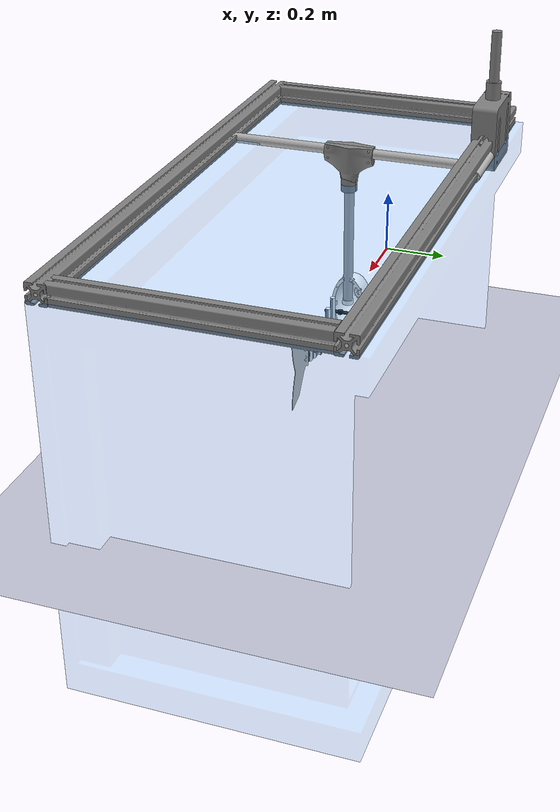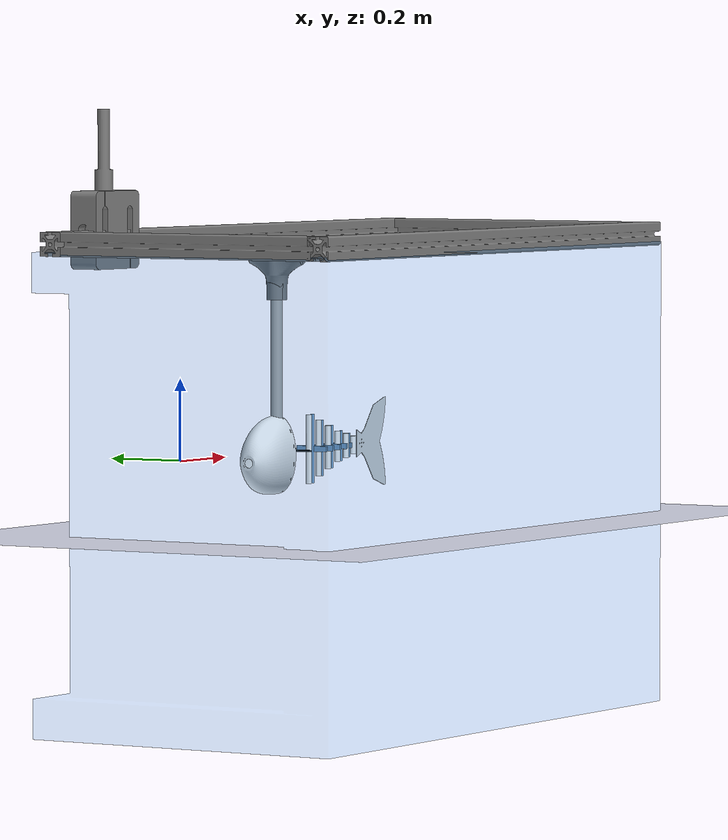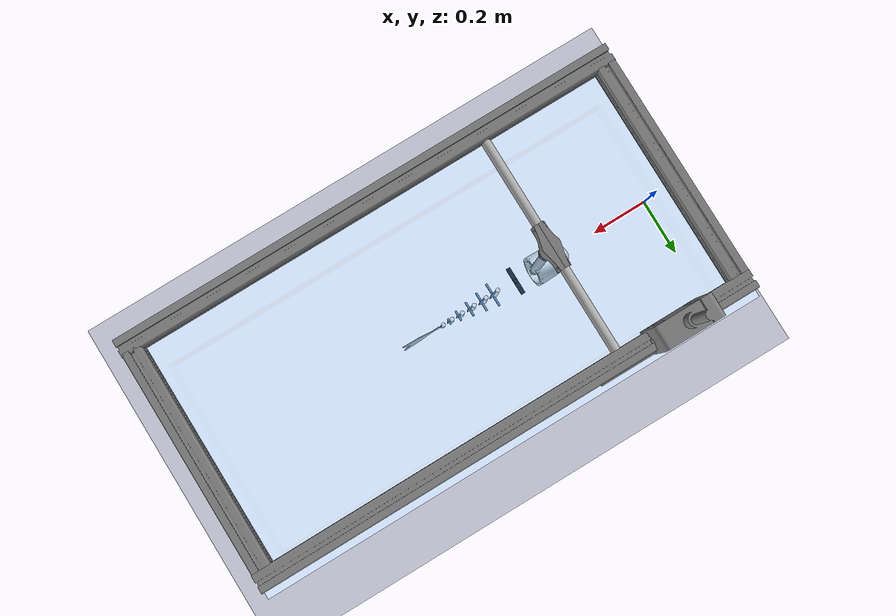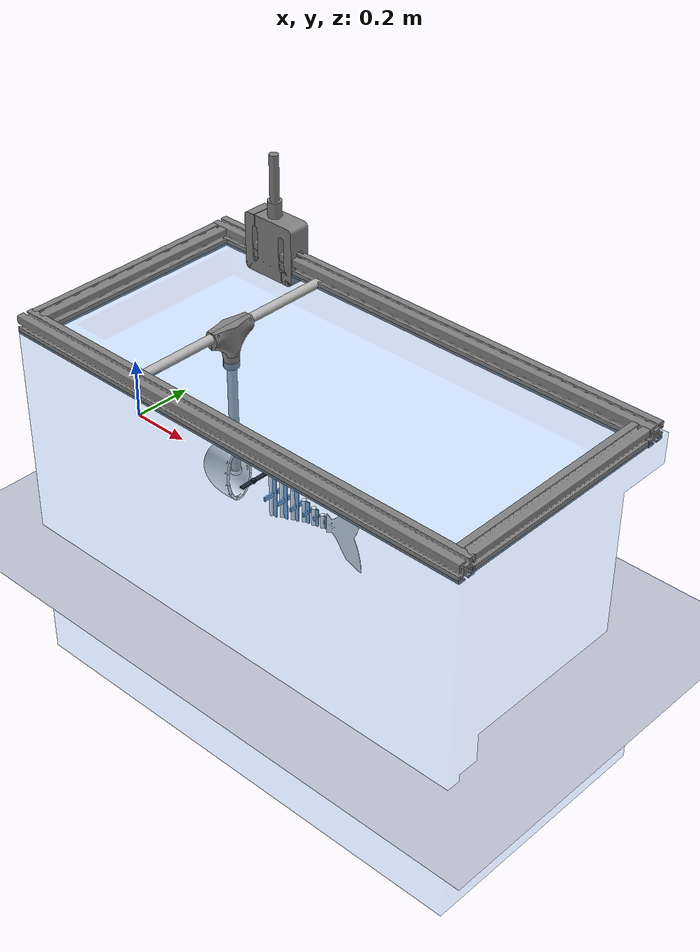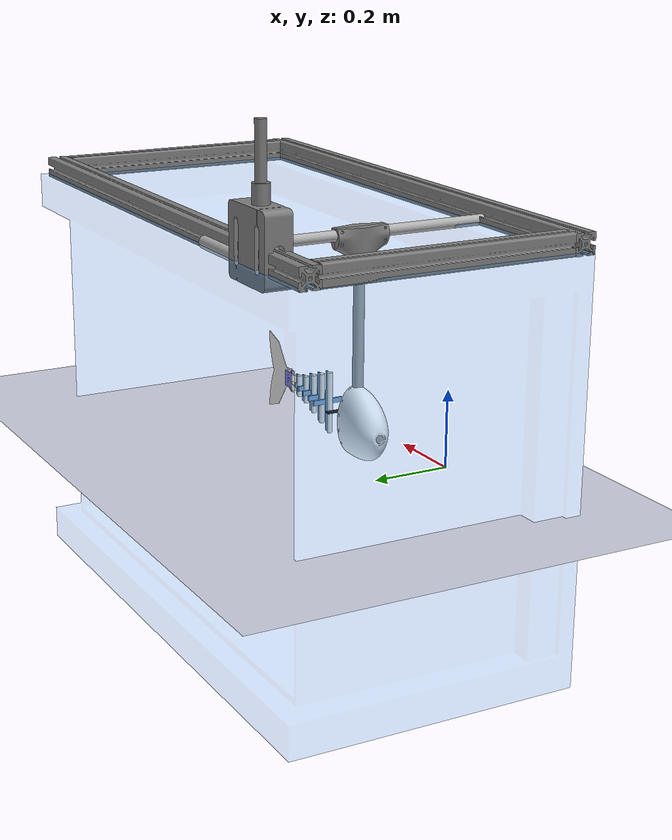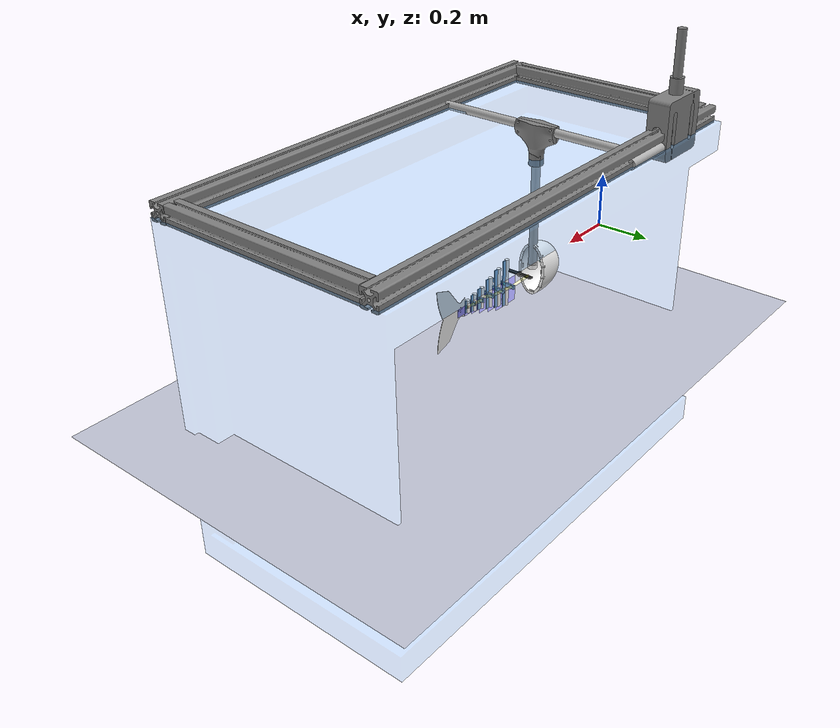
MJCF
<!--Creates a tendon fish based on Mike Yan Michelis' design. Adds a contact set between the head and the sliding block-->
<!-- Measures the force of the fish (from the thrust of its tail) via the FishTest.py script and the force sensor on the block-->
<!-- adds a realistic mass value to the bodies-->
<!--adds realistic proportions and ratios amongst the tail length, tail joints, motor to head and motor to tail-->
<!--adds a backwards force constraint to register tension, whereas forward measures compression-->
<mujoco model="tendonFish">
    <option gravity="0 0 0" density="1000" viscosity="0.0013" integrator="implicitfast" timestep="0.001" iterations="100" solver="Newton" tolerance="1e-15" ls_tolerance="1e-9" noslip_tolerance="1e-9" o_solimp="0 0.01 0.01 0.1 2">
        <flag contact="enable"/>
    </option>

    <visual>
        <global offheight="2160" offwidth="3840"/>
        <rgba haze=".3 .3 .3 1"/>
    </visual>

    <!--add a mesh that pivots like the actual fishtank setup-->
    <!--imports meshes-->
    <asset>
        <texture type="skybox" builtin="gradient" rgb1="0.6 0.6 0.6" rgb2="0 0 0" width="512" height="512"/>
        <texture name="texplane" type="2d" builtin="checker" rgb1=".15 .2 .35" rgb2=".2 .3 .45" width="512" height="512" mark="cross" markrgb=".8 .8 .8"/>
        <material name="matplane" reflectance="0.3" texture="texplane" texrepeat="10 10" texuniform="true"/>
        <mesh name="tailMesh" file="tailV2.STL" scale="0.0015 0.0015 0.0015" />
        <mesh name="headMesh" file="headExternal.STL" scale="0.0015 0.0015 0.0015" />
        <mesh name="Tank" file="glassTank.STL" scale="0.0015 0.0015 0.0025" />
        <mesh name="loadCell" file="loadCell.STL" scale="0.015 0.015 0.015" />
        <mesh name="4040" file="4040_L1.STL" scale="0.0015 0.0015 0.00343" />
        <mesh name="tubeConnector" file="tubeConnector.STL" scale="0.0015 0.0015 0.0015" />
        <mesh name="4040_smaller" file="4040_L1.STL" scale="0.0015 0.0015 0.0015" />

        <material name="acrylic" rgba="0.576470588235 0.694117647059 0.8 0.2"/>
        <material name="alu" reflectance="0.9" specular="0.9" shininess="0.9" rgba=".7 .7 .7 1"/>
        <material name="marker" rgba="0.0196078431373 0.960784313725 0.96862745098 .3"/>
        <!--density of PLA taken to be 1430, not referenced as a body but all density=1430 references are taken to be PLA-->
    </asset>

    <!--High damping and stifness values on tendon make it semi-rigid which is what is intended in the real-fish test-->
    <default>
        <joint type="hinge" pos="0 0 0" axis="0 0 1" range="-80 80" stiffness="0.65" damping="0.0"/>
        <geom fluidcoef="0.1 0.1 0.1 2.0 1.0" condim="1"/>
        <tendon width="0.005" rgba="0.941176470588 0.96862745098 0.0196078431373 .2" stiffness="60" damping="1"/>
    </default>

    <worldbody>
        <camera name="fixed" pos="0.4 -1.2 1.2" xyaxes="1 0 0 0 1 1"/>
        <camera name="fixedTop" pos="-0.85 0 1.5" xyaxes="0 -1 0 1 0 0.75"/>
        <camera name="fixedDiag" pos=".55 -1.5 1.2" xyaxes="1 0 0  0 0.5 0.5"/>
        <camera pos="0.625 -0.1 0.65" xyaxes="0.75 0.65 -0.1  -0.4 0.4 0.82"/>

        <geom name="floor" pos="0 0 -0.2" size="0 0 1" type="plane" material="matplane"/>
        <geom name="ceiling" pos="0 0 0.2" size="0 0 1" zaxis="0 0 -1" type="plane" rgba=".7 .1 .1 0"/>
        <light directional="true" diffuse=".8 .8 .8" specular=".2 .2 .2" pos="0 0 5" dir="0 0 -1"/>

        <!--creates a loadcell body and overlapping mesh to mimic our real-life testing-->
        <body name="slider_body" pos=".275 .4 .5">
            <!--creates a geometry, not a joint, restricts all movement-->
            <geom type="box" size=".05 .05 .05" rgba="1 1 1 0" contype="1" mass=".1" conaffinity="1"/>
            <site name="ft_sensor" pos="0 0 0" rgba="1 1 1 0" size=".05 .05 .05" type="box" />
            <geom name="loadingCell" type="mesh" mesh="loadCell" pos="-.125 -.055 .350" quat="-.7071 0 -.7071 0"  conaffinity="0" contype="0"/>
        </body>

        <!--creates a loadcell body and overlapping mesh, however, I change the transparency to zero to be mroe similar to real world-->
        <body name="slider_body2" pos=".575 .4 .5">
            <!--creates a geometry, not a joint, restricts all movement-->
            <geom type="box" size=".05 .4 .05" rgba="0.0196078431373 0.960784313725 0.96862745098 0" contype="1" mass=".1" conaffinity="1"/>
            <site name="ft_sensor2" pos="0 0 0" rgba="1 1 1 0" size=".05 .05 .05" type="box" />
        </body>

        <body name="FishTank" pos="0 -.42 -.70">
            <geom name="TankMesh" type="mesh" mesh="Tank" pos="0 0 0" mass="0" contype="0" conaffinity="0" rgba="0.160784313725 0.588235294118 1 0.1"/>
        </body>

        <!--adds a 40-40 setup like in the real-life test, they actually cover a lot of the components of the force-setup-->
        <body name="40-40_setup" pos="0 0 .55">
            <geom name="4040v1" type="mesh" mesh="4040" pos="0 -.42 0" mass=".001" contype="0" conaffinity="0" quat=".7071 0 .7071 0" />
            <geom name="4040v2" type="mesh" mesh="4040" pos="0 .35 0" mass=".001" contype="0" conaffinity="0" quat=".7071 0 .7071 0" />

            <geom name="4040v3" type="mesh" mesh="4040_smaller" pos="0 .35 -.06" mass=".001" contype="0" conaffinity="0" quat=".7071 .7071 0 0"/>
            <geom name="4040v4" type="mesh" mesh="4040_smaller" pos="1.585 .35 -.06" mass=".001" contype="0" conaffinity="0" quat=".7071 .7071 0 0"/>
        </body>

        <!-- adds a slider range to keep the fish always propogating forward from its original com like in the simulation -->
        <!-- add a slider that keeps the head moving forward-->
        <!-- adds a soft-constraint on the body to speed up simulation time -->
        <body pos=".35 0 0">
            <joint name="headX" pos="0.02432519 0 0.00306519" type="slide" axis="1 0 0" stiffness="0" damping="0" range="-0.05 0.015"/>
            <joint name="headY" pos="0.02432519 0 0.00306519" type="slide" axis="0 1 0" stiffness="0" damping="0" range="-0.025 0.025"/>
            <site name="COM" pos="0.02432519 0 0.00306519" size="0.015" material="marker"/>

            <!-- realistic mass should be about .1 kg, had been .25 -->
            <!--adds hard constraints in the head that act like pivots to turn the slider-force object and turn translational motion into rotational energy-->
            <geom name="head_mesh" type="mesh" mesh="headMesh" pos=".1 0.065 .1"  material="acrylic" mass=".1" quat="0 0 .7071 -.7071" fluidshape="ellipsoid"  contype="0" conaffinity="0" rgba="1 1 1 1" />
            <geom name="constraint_head" type="box" pos="0.1125 0 0" rgba=" 1 1 1 0" size=".005 .04 .04" contype="1" conaffinity="1" />
            <geom name="constraint_head_2" type="box" pos="0.0615 0 0" rgba=" 1 1 1 0" size=".005 .04 .04" contype="1" conaffinity="1" />

            <!--pretty much just translates the force of the fish's nose to a load amplifier and load censor, analogous to real-life testing-->
            <!--Adds a slider that keeps is constrained to the x-axis, the first geometry is what actually inputs the force from the fish-->
            <body name="SliderForce_Base" pos="0.025 0 .50306519">
                    <joint name="forceJoint2" type="slide" axis="1 0 0" damping="1"  />
                        <geom name="horizontalHinge" type="cylinder" size=".0175 .1"
                        material="alu" mass=".001" quat=".7071 0 .7071 0"
                        contype="1" conaffinity="1" pos=".05 .4 0"/>
                    <!--geometry that takes fish's translational motion and turns it into rotational and back into translational force output-->
                    <body name="ForceAmp_Base" pos="0.0625 0 -.5">
                        <geom name="vertical" type="cylinder" pos="0 0 .25" size=".015 .25" material="alu" mass=".001"  contype="0" conaffinity="0" />
                        <geom name="baseVertical" type="cylinder" pos="0 0 0" size=".0175 .0075" rgba="1 1 1 1" mass=".001" contype="1" conaffinity="1" />
                        <geom name="tube1" type="mesh" mesh="tubeConnector" pos=".029 -.077 .375" mass=".001" contype="0" conaffinity="0" quat=".7071 0 0 .7071"/>
                        <geom name="tube2" type="mesh" mesh="tubeConnector" pos="-.029 .075 .375" mass=".001" contype="0" conaffinity="0" quat="-.7071 0 0 .7071"/>

                        <joint name="forceJoint1" type="hinge" axis=" 0 1 0" pos="0 0 -.25" />
                        <geom name="outofpageHinge" type="cylinder" pos=" 0 0 .5" size=".015 .4" material="alu" mass=".001"  quat=".7071 .7071 0 0" contype="0" conaffinity="0" />
                    </body>
            </body>

            <body pos="0.1635 0 0" name="motor" >
                <joint name="motor_rotate" type="hinge" axis="0 0 1" pos="0 0 0" limited="false" stiffness="0" damping="0"/>
                <geom name="motorSlider" type="cylinder" pos="0 0 0" size="0.0075 0.006" rgba=".1 .1 .1 1" density="1250" fluidshape="ellipsoid"/>
                <geom name="motorRods" type="box" pos="0 0 0" size="0.0075 0.05 0.001975" rgba=".1 .1 .1 1" density="1250" fluidshape="ellipsoid" contype="0" conaffinity="0"/>
                <site name="bodyLeft" pos="0 -0.035 0.00345" size="0.005" rgba=".9 .6 .5 .5"/>
                <site name="bodyRight" pos="0 0.035 0.00345" size="0.005" rgba=".9 .6 .5 .5"/>
            </body>

            <!--center frame realistic mass should be around .2 kg , divided by 5 joints should be .04 kg per joint, however, we are using PLA density-->
            <!--had been .290000-->
            <!--to get correct sizing distance, this first position is moved from .29 to .24 then all are moved backwards .1-->
            <!--changed color scheme to be more tolerant to color-blind people with blue-yellow white scheme-->
            <body pos="0.24 0 0">
                <geom name="joint0" type="cylinder" pos="0 0 0" size="0.0075 0.08625" rgba="1 1 1 1" mass="0" contype="0" conaffinity="0"/>
                <joint name="joint0"/>
                <geom name="joint0-tail0" type="box" pos="0.0035 0 0" size="0.0535 0.0005 0.08625" rgba="0 0 1 .4" mass="0.001" fluidshape="ellipsoid" contype="0" conaffinity="0"/>
                <geom name="tail0" type="box" pos="0.014499999999999999 0 0" size="0.0075 0.0015 0.08625" rgba=".5 .7 .9 1" density="1250" fluidshape="ellipsoid" contype="0" conaffinity="0"/>
                <site name="marker4" pos="0.014499999999999999 0 0" size="0.005" material="marker"/>

                <!--sizes of the tail_left and right aren't changed, positions further will be moved negatively .005-->
                <geom name="tail0left" type="box" pos="0.014 -0.02575 0" size="0.003 0.018 0.007" rgba=".5 .7 .9 1" density="1250" fluidshape="ellipsoid" contype="0" conaffinity="0"/>
                <geom name="tail0right" type="box" pos="0.014 0.02575 0" size="0.003 0.018 0.007" rgba=".5 .7 .9 1" density="1250" fluidshape="ellipsoid" contype="0" conaffinity="0"/>
                <site name="tail0left" pos="0.014 -0.034 0" size="0.004" rgba=".9 .6 .5 .5"/>
                <site name="tail0right" pos="0.014 0.034 0" size="0.004" rgba=".9 .6 .5 .5"/>

                <geom name="tail0-joint1" type="box" pos="0.02575 0 0" size="0.00375 0.0005 0.08625" rgba="0 0 1 .4" mass="0.04" fluidshape="ellipsoid" contype="0" conaffinity="0"/>

                <body pos="0.0445 0 0">
                    <geom name="joint1" type="cylinder" pos="0 0 0" size="0.0075 0.0703125" rgba="1 1 1 1" mass="0" contype="0" conaffinity="0"/>
                    <joint name="joint1"/>
                    <geom name="joint1-tail1" type="box" pos="0.00375 0 0" size="0.05375 0.0005 0.0703125" rgba="0 0 1 .4" mass="0.001" fluidshape="ellipsoid" contype="0" conaffinity="0"/>
                    <geom name="tail1" type="box" pos="0.015 0 0" size="0.0075 0.0015 0.0703125" rgba=".5 .7 .9 1" density="1430" fluidshape="ellipsoid" contype="0" conaffinity="0"/>
                    <site name="marker5" pos="0.015 0 0" size="0.005" material="marker"/>

                    <geom name="tail1left" type="box" pos="0.0145 -0.02075 0" size="0.003 0.0148 0.007" rgba=".5 .7 .9 1" density="1430" fluidshape="ellipsoid" contype="0" conaffinity="0"/>
                    <geom name="tail1right" type="box" pos="0.0145 0.02075 0" size="0.003 0.0148 0.007" rgba=".5 .7 .9 1" density="1430" fluidshape="ellipsoid" contype="0" conaffinity="0"/>
                    <site name="tail1left" pos="0.0145 -0.026 0" size="0.004" rgba=".9 .6 .5 .5"/>
                    <site name="tail1right" pos="0.0145 0.026 0" size="0.004" rgba=".9 .6 .5 .5"/>

                    <geom name="tail1-joint2" type="box" pos="0.02675 0 0" size="0.00425 0.0005 0.0703125" rgba="0 0 1 .4" mass="0.001" fluidshape="ellipsoid" contype="0" conaffinity="0"/>

                    <body pos="0.046 0 0">
                        <geom name="joint2" type="cylinder" pos="0 0 0" size="0.0075 0.054375" rgba="1 1 1 1" mass="0" contype="0" conaffinity="0"/>
                        <joint name="joint2"/>
                        <geom name="joint2-tail2" type="box" pos="0.00425 0 0" size="0.05425 0.0005 0.054375" rgba="0 0 1 .4" mass="0.001" fluidshape="ellipsoid" contype="0" conaffinity="0"/>
                        <geom name="tail2" type="box" pos="0.016 0 0" size="0.0075 0.0015 0.054375" rgba=".5 .7 .9 1" density="1430" fluidshape="ellipsoid" contype="0" conaffinity="0"/>
                        <site name="marker6" pos="0.016 0 0" size="0.005" material="marker"/>

                        <geom name="tail2left" type="box" pos="0.0155 -0.01575 0" size="0.003 0.0116 0.007" rgba=".5 .7 .9 1" density="1430" fluidshape="ellipsoid" contype="0" conaffinity="0"/>
                        <geom name="tail2right" type="box" pos="0.0155 0.01575 0" size="0.003 0.0116 0.007" rgba=".5 .7 .9 1" density="1430" fluidshape="ellipsoid" contype="0" conaffinity="0"/>
                        <site name="tail2left" pos="0.0155 -0.020 0" size="0.004" rgba=".9 .6 .5 .5"/>
                        <site name="tail2right" pos="0.0155 0.020 0" size="0.004" rgba=".9 .6 .5 .5"/>

                        <geom name="tail2-joint3" type="box" pos="0.027 0 0" size="0.0035 0.0005 0.054375" rgba="0 0 1 .4" mass="0.001" fluidshape="ellipsoid" contype="0" conaffinity="0"/>

                        <body pos="0.0455 0 0">
                            <geom name="joint3" type="cylinder" pos="0 0 0" size="0.0075 0.0384375" rgba="1 1 1 1" mass="0" contype="0" conaffinity="0"/>
                            <joint name="joint3"/>
                            <geom name="joint3-tail3" type="box" pos="0.0035 0 0" size="0.0535 0.0005 0.0384375" rgba="0 0 1 .4" mass="0.001" fluidshape="ellipsoid" contype="0" conaffinity="0"/>
                            <geom name="tail3" type="box" pos="0.014499999999999999 0 0" size="0.0075 0.0015 0.0384375" rgba=".5 .7 .9 1" density="1430" fluidshape="ellipsoid" contype="0" conaffinity="0"/>
                            <site name="marker7" pos="0.014499999999999999 0 0" size="0.005" material="marker"/>

                            <geom name="tail3left" type="box" pos="0.014 -0.01075 0" size="0.003 0.0084 0.007" rgba=".5 .7 .9 1" density="1430" fluidshape="ellipsoid" contype="0" conaffinity="0"/>
                            <geom name="tail3right" type="box" pos="0.014 0.01075 0" size="0.003 0.0084 0.007" rgba=".5 .7 .9 1" density="1430" fluidshape="ellipsoid" contype="0" conaffinity="0"/>
                            <site name="tail3left" pos="0.014 -0.012 0" size="0.004" rgba=".9 .6 .5 .5"/>
                            <site name="tail3right" pos="0.014 0.012 0" size="0.004" rgba=".9 .6 .5 .5"/>

                            <geom name="tail3-joint4" type="box" pos="0.0235 0 0" size="0.0015 0.0005 0.0384375" rgba="0 0 1 .4" mass="0.001" fluidshape="ellipsoid" contype="0" conaffinity="0"/>

                            <body pos="0.039999999999999998 0 0">
                                <geom name="joint4" type="cylinder" pos="0 0 0" size="0.0075 0.03046875" rgba="1 1 1 1" mass="0" contype="0" conaffinity="0"/>
                                <joint name="joint4"/>
                                <geom name="joint4-tail4" type="box" pos="0.0015 0 0" size="0.0515 0.0005 0.03046875" rgba="0 0 1 .4" mass="0.001" fluidshape="ellipsoid" contype="0" conaffinity="0"/>
                                <geom name="tail4" type="box" pos="0.010499999999999999 0 0" size="0.0075 0.0015 0.03046875" rgba=".5 .7 .9 1" density="1430" fluidshape="ellipsoid" contype="0" conaffinity="0"/>
                                <site name="marker8" pos="0.010499999999999999 0 0" size="0.005" material="marker"/>

                                <geom name="tail4left" type="box" pos="0.01 -0.00575 0" size="0.003 0.0052 0.007" rgba=".5 .7 .9 1" density="1430" fluidshape="ellipsoid" contype="0" conaffinity="0"/>
                                <geom name="tail4right" type="box" pos="0.01 0.00575 0" size="0.003 0.0052 0.007" rgba=".5 .7 .9 1" density="1430" fluidshape="ellipsoid" contype="0" conaffinity="0"/>
                                <site name="tail4left" pos="0.01 -0.008 0" size="0.004" rgba=".9 .6 .5 .5"/>
                                <site name="tail4right" pos="0.01 0.008 0" size="0.004" rgba=".9 .6 .5 .5"/>

                                <body pos="0.035 0 0">
                                    <geom name="joint5" type="cylinder" pos="0 0 0" size="0.0075 0.0225" rgba="1 1 1 1" mass="0" contype="0" conaffinity="0"/>
                                    <joint name="joint5"/>
                                    <geom name="joint5-tail5" type="box" pos="0.0015 0 0" size="0.0515 0.0005 0.0225" rgba="0 0 1 .4" mass="0.001" fluidshape="ellipsoid" contype="0" conaffinity="0"/>
                                    <geom name="tail5" type="box" pos="0.008 0 0" size="0.0055 0.0012 0.0225" rgba=".5 .7 .9 1" density="1430" fluidshape="ellipsoid" contype="0" conaffinity="0"/>
                                    <site name="marker9" pos="0.008 0 0" size="0.005" material="marker"/>

                                    <geom name="tail5left" type="box" pos="0.006 -0.00075 0" size="0.003 0.002 0.007" rgba=".5 .7 .9 1" density="1430" fluidshape="ellipsoid" contype="0" conaffinity="0"/>
                                    <geom name="tail5right" type="box" pos="0.006 0.00075 0" size="0.003 0.002 0.007" rgba=".5 .7 .9 1" density="1430" fluidshape="ellipsoid" contype="0" conaffinity="0"/>
                                    <site name="tail5left" pos="0.006 -0.003 0" size="0.004" rgba=".9 .6 .5 .5"/>
                                    <site name="tail5right" pos="0.006 0.003 0" size="0.004" rgba=".9 .6 .5 .5"/>

                                <!-- Tail Fin, realistic mass should be about .05 kg, was .15 kg -->
                                <geom name="finTail" type="mesh"  mesh="tailMesh" pos="-.190 0 -.110" size="0.005 0.005 0.025" quat="0.7071 0.7071 0 0" rgba=".9 .9 .9 1" mass="0.05" fluidshape="ellipsoid" contype="0" conaffinity="0"/>
                                <site name="marker10" pos="0.025 .0085 -0.5" size="0.005" material="marker"/>

                                </body>
                            </body>
                        </body>
                    </body>
                </body>
            </body>
        </body>

    </worldbody>

    <!--tail organization-->
    <tendon>
        <spatial name="tendonLeft">
            <site site="bodyLeft"/>
            <site site="tail0left"/>
            <site site="tail1left"/>
            <site site="tail2left"/>
            <site site="tail3right"/>
            <site site="tail4right"/>
            <site site="tail5right"/>
        </spatial>
        <spatial name="tendonRight" >
            <site site="bodyRight"/>
            <site site="tail0right"/>
            <site site="tail1right"/>
            <site site="tail2right"/>
            <site site="tail3left"/>
            <site site="tail4left"/>
            <site site="tail5left"/>
        </spatial>
    </tendon>

    <!--creates actuator to control motor and to couple the forceamplifier. Measures the force with a sensor-->
    <actuator>
        <velocity name="motor" joint="motor_rotate" kv="100" ctrllimited="true" ctrlrange="-20 20" forcerange="-5 5"/>
    </actuator>

    <sensor>
        <force name = "force" site="ft_sensor" />
        <force name = "force_2" site="ft_sensor2" />
	</sensor>

</mujoco>
